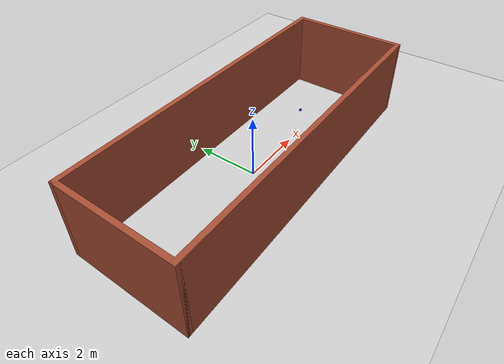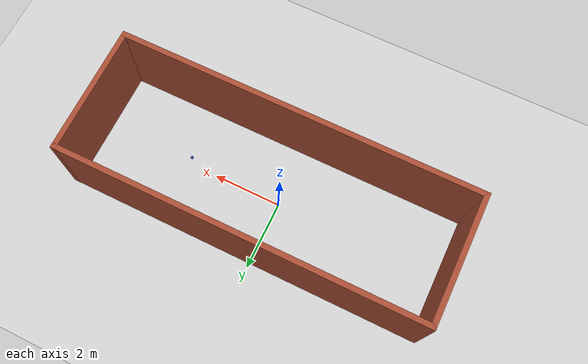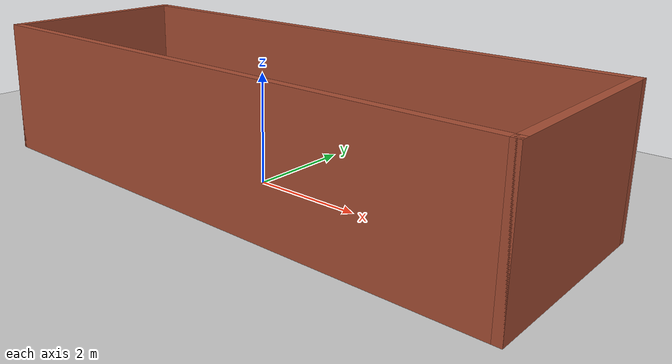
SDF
<sdf version="1.6">
 <world name="default">
  <light name="sun" type="directional">
   <pose>0 0 10 0 -0 0</pose>
   <diffuse>0.8 0.8 0.8 1</diffuse>
   <specular>0.2 0.2 0.2 1</specular>
   <attenuation>
    <range>1000</range>
    <constant>0.9</constant>
    <linear>0.01</linear>
    <quadratic>0.001</quadratic>
   </attenuation>
   <direction>-0.5 0.1 -0.9</direction>
  </light>
  <model name="ground_plane">
   <static>1</static>
   <link name="link">
    <collision name="collision">
     <geometry><plane><normal>0 0 1</normal><size>100 100</size></plane></geometry>
     <surface>
      <contact><collide_bitmask>65535</collide_bitmask></contact>
      <friction><ode><mu>100</mu><mu2>50</mu2></ode></friction>
     </surface>
    </collision>
    <visual name="visual">
     <cast_shadows>0</cast_shadows>
     <geometry><plane><normal>0 0 1</normal><size>100 100</size></plane></geometry>
     <material>
      <script><uri>file://media/materials/scripts/gazebo.material</uri><name>Gazebo/Grey</name></script>
     </material>
    </visual>
   </link>
  </model>
  <gravity>0 0 -9.8</gravity>
  <magnetic_field>6e-06 2.3e-05 -4.2e-05</magnetic_field>
  <atmosphere type="adiabatic"/>
  <physics name="default_physics" default="0" type="ode">
   <max_step_size>0.001</max_step_size>
   <real_time_factor>1</real_time_factor>
   <real_time_update_rate>1000</real_time_update_rate>
  </physics>
  <scene><ambient>0.4 0.4 0.4 1</ambient><background>0.7 0.7 0.7 1</background><shadows>1</shadows></scene>
  <audio><device>default</device></audio>
  <spherical_coordinates>
   <surface_model>EARTH_WGS84</surface_model>
   <latitude_deg>0</latitude_deg>
   <longitude_deg>0</longitude_deg>
   <elevation>0</elevation>
   <heading_deg>0</heading_deg>
  </spherical_coordinates>
  <model name="demo_cube">
   <static>0</static>
   <link name="link">
    <inertial>
     <mass>0.25</mass>
     <inertia><ixx>0.001</ixx><ixy>0</ixy><ixz>0</ixz><iyy>0.001</iyy><iyz>0</iyz><izz>0.001</izz></inertia>
    </inertial>
    <collision name="collision">
     <geometry><box><size>0.06 0.06 0.06</size></box></geometry>
     <surface>
      <friction><ode><mu>30</mu><mu2>30</mu2></ode></friction>
      <contact><ode><kp>1e+06</kp><kd>100</kd><max_vel>1</max_vel><min_depth>0.002</min_depth></ode></contact>
     </surface>
    </collision>
    <visual name="visual">
     <geometry><box><size>0.06 0.06 0.06</size></box></geometry>
     <material>
      <script><uri>file://media/materials/scripts/gazebo.material</uri><name>Gazebo/Blue</name></script>
     </material>
    </visual>
    <velocity_decay><linear>0</linear><angular>0</angular></velocity_decay>
   </link>
   <pose>2.66269 0.033602 0.802999 0 -0 0</pose>
  </model>
  <model name="brick_shack">
   <pose>0.333 0 0 0 -0 0</pose>
   <link name="Wall_0">
    <collision name="Wall_0_Collision">
     <geometry><box><size>10.5 0.15 2.5</size></box></geometry>
     <pose>0 0 1.25 0 -0 0</pose>
    </collision>
    <visual name="Wall_0_Visual">
     <pose>0 0 1.25 0 -0 0</pose>
     <geometry><box><size>10.5 0.15 2.5</size></box></geometry>
     <material>
      <script><uri>file://media/materials/scripts/gazebo.material</uri><name>Gazebo/Bricks</name></script>
      <ambient>1 1 1 1</ambient>
     </material>
     <meta><layer>0</layer></meta>
    </visual>
    <pose>-0 -1.8 0 0 -0 0</pose>
   </link>
   <link name="Wall_2">
    <collision name="Wall_2_Collision">
     <geometry><box><size>3.75 0.15 2.5</size></box></geometry>
     <pose>0 0 1.25 0 -0 0</pose>
    </collision>
    <visual name="Wall_2_Visual">
     <pose>0 0 1.25 0 -0 0</pose>
     <geometry><box><size>3.75 0.15 2.5</size></box></geometry>
     <material>
      <script><uri>file://media/materials/scripts/gazebo.material</uri><name>Gazebo/Bricks</name></script>
      <ambient>1 1 1 1</ambient>
     </material>
     <meta><layer>0</layer></meta>
    </visual>
    <pose>5.175 0 0 0 -0 1.5708</pose>
   </link>
   <link name="Wall_3">
    <collision name="Wall_3_Collision">
     <geometry><box><size>10.5 0.15 2.5</size></box></geometry>
     <pose>0 0 1.25 0 -0 0</pose>
    </collision>
    <visual name="Wall_3_Visual">
     <pose>0 0 1.25 0 -0 0</pose>
     <geometry><box><size>10.5 0.15 2.5</size></box></geometry>
     <material>
      <script><uri>file://media/materials/scripts/gazebo.material</uri><name>Gazebo/Bricks</name></script>
      <ambient>1 1 1 1</ambient>
     </material>
     <meta><layer>0</layer></meta>
    </visual>
    <pose>-0 1.8 0 0 -0 3.14159</pose>
   </link>
   <link name="Wall_4">
    <collision name="Wall_4_Collision">
     <geometry><box><size>3.75 0.15 2.5</size></box></geometry>
     <pose>0 0 1.25 0 -0 0</pose>
    </collision>
    <visual name="Wall_4_Visual">
     <pose>0 0 1.25 0 -0 0</pose>
     <geometry><box><size>3.75 0.15 2.5</size></box></geometry>
     <material>
      <script><uri>file://media/materials/scripts/gazebo.material</uri><name>Gazebo/Bricks</name></script>
      <ambient>1 1 1 1</ambient>
     </material>
     <meta><layer>0</layer></meta>
    </visual>
    <pose>-5.175 0 0 0 -0 -1.5708</pose>
   </link>
   <static>1</static>
  </model>
  <light name="user_point_light_2" type="point">
   <pose>-0.004151 -0.000615 1 0 -0 0</pose>
   <diffuse>0.5 0.5 0.5 1</diffuse>
   <specular>0.1 0.1 0.1 1</specular>
   <attenuation>
    <range>20</range>
    <constant>0.5</constant>
    <linear>0.01</linear>
    <quadratic>0.001</quadratic>
   </attenuation>
   <cast_shadows>0</cast_shadows>
   <direction>0 0 -1</direction>
  </light>
  <light name="user_spot_light_0" type="spot">
   <pose>2.94173 0.041208 1 0 -0 0</pose>
   <diffuse>0.5 0.5 0.5 1</diffuse>
   <specular>0.1 0.1 0.1 1</specular>
   <direction>0 0 -1</direction>
   <attenuation>
    <range>20</range>
    <constant>0.5</constant>
    <linear>0.01</linear>
    <quadratic>0.001</quadratic>
   </attenuation>
   <cast_shadows>0</cast_shadows>
   <spot><inner_angle>0.6</inner_angle><outer_angle>1</outer_angle><falloff>1</falloff></spot>
  </light>
  <light name="user_spot_light_1" type="spot">
   <pose>-3.04685 -0.015769 1 0 -0 0</pose>
   <diffuse>0.5 0.5 0.5 1</diffuse>
   <specular>0.1 0.1 0.1 1</specular>
   <direction>0 0 -1</direction>
   <attenuation>
    <range>20</range>
    <constant>0.5</constant>
    <linear>0.01</linear>
    <quadratic>0.001</quadratic>
   </attenuation>
   <cast_shadows>0</cast_shadows>
   <spot><inner_angle>0.6</inner_angle><outer_angle>1</outer_angle><falloff>1</falloff></spot>
  </light>
  <light name="user_point_light_0" type="point">
   <pose>1.41155 0.054429 1 0 -0 0</pose>
   <diffuse>0.5 0.5 0.5 1</diffuse>
   <specular>0.1 0.1 0.1 1</specular>
   <attenuation>
    <range>20</range>
    <constant>0.5</constant>
    <linear>0.01</linear>
    <quadratic>0.001</quadratic>
   </attenuation>
   <cast_shadows>0</cast_shadows>
   <direction>0 0 -1</direction>
  </light>
  <light name="user_point_light_1" type="point">
   <pose>-1.81602 0.006228 1 0 -0 0</pose>
   <diffuse>0.5 0.5 0.5 1</diffuse>
   <specular>0.1 0.1 0.1 1</specular>
   <attenuation>
    <range>20</range>
    <constant>0.5</constant>
    <linear>0.01</linear>
    <quadratic>0.001</quadratic>
   </attenuation>
   <cast_shadows>0</cast_shadows>
   <direction>0 0 -1</direction>
  </light>
  <light name="user_spot_light_2" type="spot">
   <pose>-0.202856 -0.688819 1 0 -0 0</pose>
   <diffuse>0.5 0.5 0.5 1</diffuse>
   <specular>0.1 0.1 0.1 1</specular>
   <direction>0 0 -1</direction>
   <attenuation>
    <range>20</range>
    <constant>0.5</constant>
    <linear>0.01</linear>
    <quadratic>0.001</quadratic>
   </attenuation>
   <cast_shadows>0</cast_shadows>
   <spot><inner_angle>0.6</inner_angle><outer_angle>1</outer_angle><falloff>1</falloff></spot>
  </light>
  <light name="user_spot_light_3" type="spot">
   <pose>-0.093554 1.33092 1 0 -0 0</pose>
   <diffuse>0.5 0.5 0.5 1</diffuse>
   <specular>0.1 0.1 0.1 1</specular>
   <direction>0 0 -1</direction>
   <attenuation>
    <range>20</range>
    <constant>0.5</constant>
    <linear>0.01</linear>
    <quadratic>0.001</quadratic>
   </attenuation>
   <cast_shadows>0</cast_shadows>
   <spot><inner_angle>0.6</inner_angle><outer_angle>1</outer_angle><falloff>1</falloff></spot>
  </light>
  <light name="user_spot_light_4" type="spot">
   <pose>2.65338 -1.01928 1 0 -0 0</pose>
   <diffuse>0.5 0.5 0.5 1</diffuse>
   <specular>0.1 0.1 0.1 1</specular>
   <direction>0 0 -1</direction>
   <attenuation>
    <range>20</range>
    <constant>0.5</constant>
    <linear>0.01</linear>
    <quadratic>0.001</quadratic>
   </attenuation>
   <cast_shadows>0</cast_shadows>
   <spot><inner_angle>0.6</inner_angle><outer_angle>1</outer_angle><falloff>1</falloff></spot>
  </light>
  <light name="user_spot_light_5" type="spot">
   <pose>2.51183 1.32941 1 0 -0 0</pose>
   <diffuse>0.5 0.5 0.5 1</diffuse>
   <specular>0.1 0.1 0.1 1</specular>
   <direction>0 0 -1</direction>
   <attenuation>
    <range>20</range>
    <constant>0.5</constant>
    <linear>0.01</linear>
    <quadratic>0.001</quadratic>
   </attenuation>
   <cast_shadows>0</cast_shadows>
   <spot><inner_angle>0.6</inner_angle><outer_angle>1</outer_angle><falloff>1</falloff></spot>
  </light>
  <light name="user_spot_light_6" type="spot">
   <pose>-3.0239 -0.981208 1 0 -0 0</pose>
   <diffuse>0.5 0.5 0.5 1</diffuse>
   <specular>0.1 0.1 0.1 1</specular>
   <direction>0 0 -1</direction>
   <attenuation>
    <range>20</range>
    <constant>0.5</constant>
    <linear>0.01</linear>
    <quadratic>0.001</quadratic>
   </attenuation>
   <cast_shadows>0</cast_shadows>
   <spot><inner_angle>0.6</inner_angle><outer_angle>1</outer_angle><falloff>1</falloff></spot>
  </light>
  <light name="user_spot_light_7" type="spot">
   <pose>-3.12538 1.28855 1 0 -0 0</pose>
   <diffuse>0.5 0.5 0.5 1</diffuse>
   <specular>0.1 0.1 0.1 1</specular>
   <direction>0 0 -1</direction>
   <attenuation>
    <range>20</range>
    <constant>0.5</constant>
    <linear>0.01</linear>
    <quadratic>0.001</quadratic>
   </attenuation>
   <cast_shadows>0</cast_shadows>
   <spot><inner_angle>0.6</inner_angle><outer_angle>1</outer_angle><falloff>1</falloff></spot>
  </light>
 </world>
</sdf>
